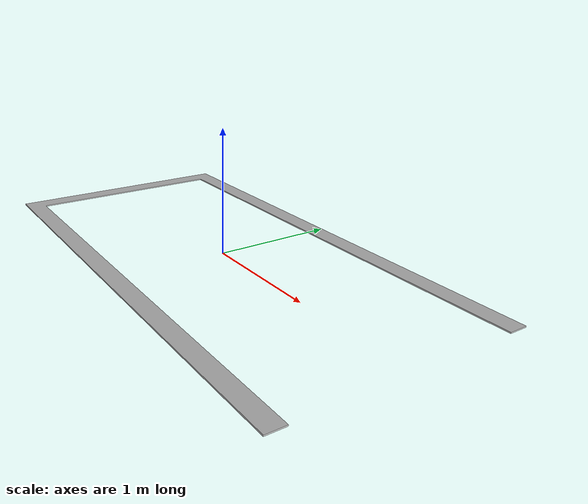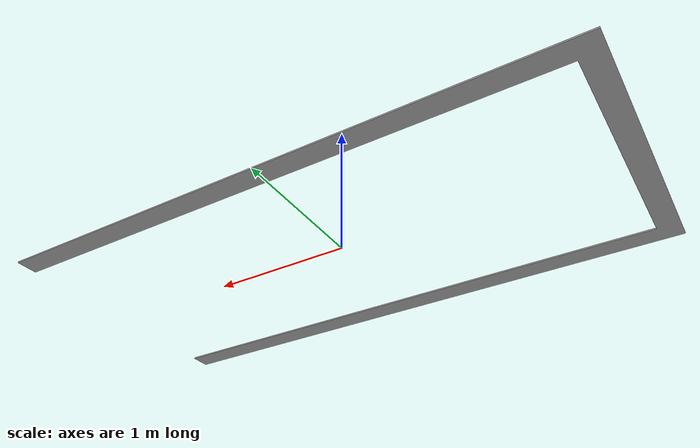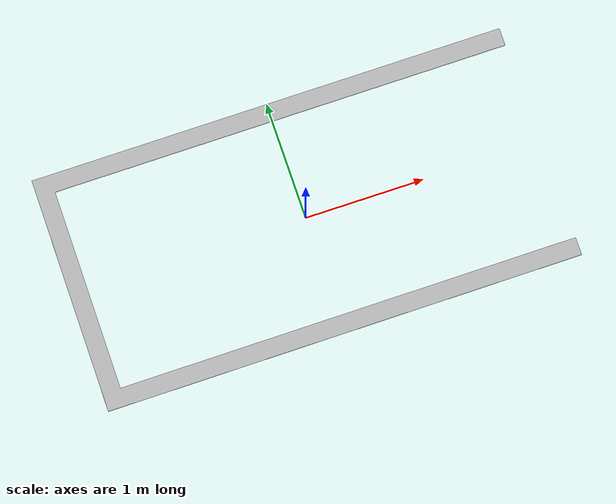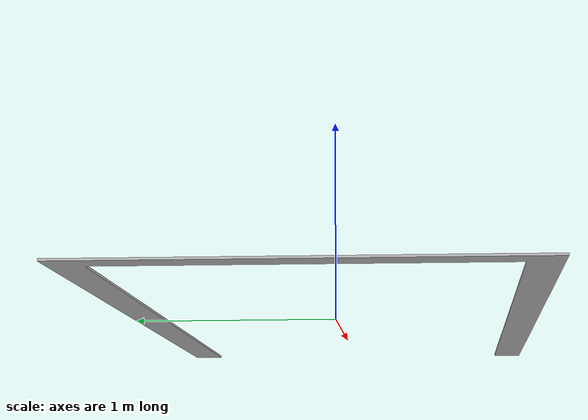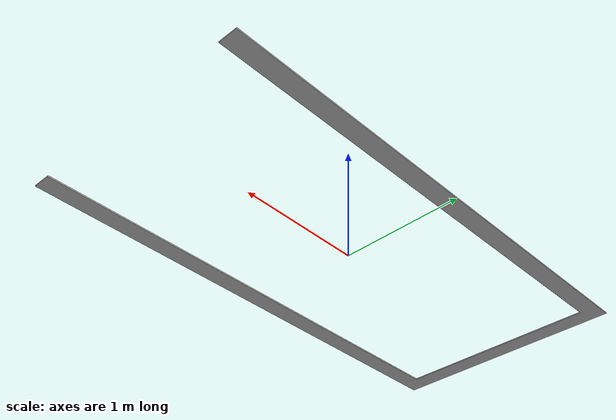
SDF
<?xml version="1.0" ?>
<sdf version="1.7">
  <model name="park_yeri">
    <static>true</static>
    <link name="link">
      <visual name="visual">
        <geometry><mesh><uri>file:///home/yigit/shell_ws/src/parkour_pkg/models/model_files/meshes/park_yeri.obj</uri></mesh></geometry>
      </visual>
      <collision name="collision">
        <geometry><box><size>4 2 0.01</size></box></geometry>
      </collision>
    </link>
  </model>
</sdf>
